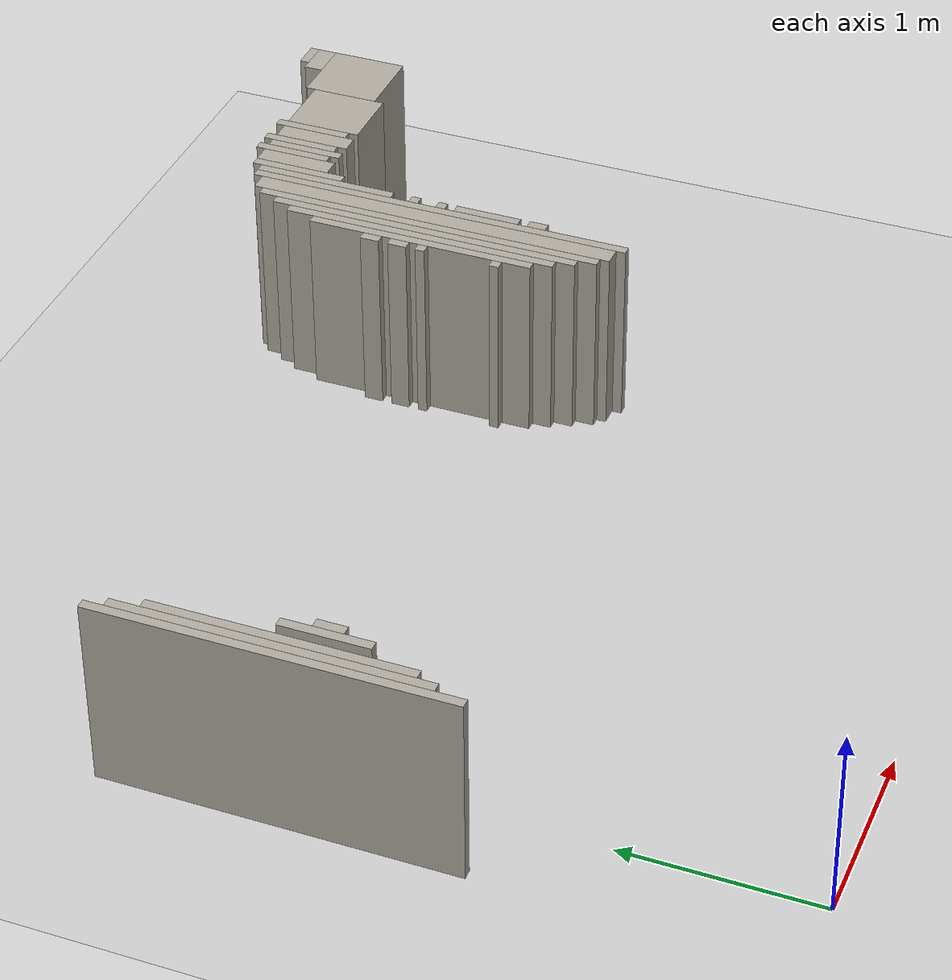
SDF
<sdf version="1.6">
 <world name="fr079_office">
  <include><uri>model://sun</uri></include>
  <include><uri>model://ground_plane</uri></include>
  <model name="fr079_office_walls">
   <static>true</static>
   <link name="w2044">
    <pose>-0.373 2.444 0.500 0 0 0</pose>
    <collision name="c"><geometry><box><size>0.050 1.800 1.000</size></box></geometry></collision>
    <visual name="v">
     <geometry><box><size>0.050 1.800 1.000</size></box></geometry>
     <material><ambient>0.68 0.66 0.62 1</ambient><diffuse>0.68 0.66 0.62 1</diffuse></material>
    </visual>
   </link>
   <link name="w2085">
    <pose>-0.323 2.469 0.500 0 0 0</pose>
    <collision name="c"><geometry><box><size>0.050 1.550 1.000</size></box></geometry></collision>
    <visual name="v">
     <geometry><box><size>0.050 1.550 1.000</size></box></geometry>
     <material><ambient>0.68 0.66 0.62 1</ambient><diffuse>0.68 0.66 0.62 1</diffuse></material>
    </visual>
   </link>
   <link name="w2115">
    <pose>-0.273 2.444 0.500 0 0 0</pose>
    <collision name="c"><geometry><box><size>0.050 1.300 1.000</size></box></geometry></collision>
    <visual name="v">
     <geometry><box><size>0.050 1.300 1.000</size></box></geometry>
     <material><ambient>0.68 0.66 0.62 1</ambient><diffuse>0.68 0.66 0.62 1</diffuse></material>
    </visual>
   </link>
   <link name="w2187">
    <pose>-0.173 2.269 0.500 0 0 0</pose>
    <collision name="c"><geometry><box><size>0.050 0.450 1.000</size></box></geometry></collision>
    <visual name="v">
     <geometry><box><size>0.050 0.450 1.000</size></box></geometry>
     <material><ambient>0.68 0.66 0.62 1</ambient><diffuse>0.68 0.66 0.62 1</diffuse></material>
    </visual>
   </link>
   <link name="w2188">
    <pose>3.077 3.069 0.500 0 0 0</pose>
    <collision name="c"><geometry><box><size>0.050 2.050 1.000</size></box></geometry></collision>
    <visual name="v">
     <geometry><box><size>0.050 2.050 1.000</size></box></geometry>
     <material><ambient>0.68 0.66 0.62 1</ambient><diffuse>0.68 0.66 0.62 1</diffuse></material>
    </visual>
   </link>
   <link name="w2197">
    <pose>3.002 3.069 0.500 0 0 0</pose>
    <collision name="c"><geometry><box><size>0.100 1.950 1.000</size></box></geometry></collision>
    <visual name="v">
     <geometry><box><size>0.100 1.950 1.000</size></box></geometry>
     <material><ambient>0.68 0.66 0.62 1</ambient><diffuse>0.68 0.66 0.62 1</diffuse></material>
    </visual>
   </link>
   <link name="w2205">
    <pose>2.927 3.069 0.500 0 0 0</pose>
    <collision name="c"><geometry><box><size>0.050 1.850 1.000</size></box></geometry></collision>
    <visual name="v">
     <geometry><box><size>0.050 1.850 1.000</size></box></geometry>
     <material><ambient>0.68 0.66 0.62 1</ambient><diffuse>0.68 0.66 0.62 1</diffuse></material>
    </visual>
   </link>
   <link name="w2213">
    <pose>-0.123 2.269 0.500 0 0 0</pose>
    <collision name="c"><geometry><box><size>0.050 0.150 1.000</size></box></geometry></collision>
    <visual name="v">
     <geometry><box><size>0.050 0.150 1.000</size></box></geometry>
     <material><ambient>0.68 0.66 0.62 1</ambient><diffuse>0.68 0.66 0.62 1</diffuse></material>
    </visual>
   </link>
   <link name="w2227">
    <pose>2.877 3.069 0.500 0 0 0</pose>
    <collision name="c"><geometry><box><size>0.050 1.650 1.000</size></box></geometry></collision>
    <visual name="v">
     <geometry><box><size>0.050 1.650 1.000</size></box></geometry>
     <material><ambient>0.68 0.66 0.62 1</ambient><diffuse>0.68 0.66 0.62 1</diffuse></material>
    </visual>
   </link>
   <link name="w2246">
    <pose>2.827 3.069 0.500 0 0 0</pose>
    <collision name="c"><geometry><box><size>0.050 1.450 1.000</size></box></geometry></collision>
    <visual name="v">
     <geometry><box><size>0.050 1.450 1.000</size></box></geometry>
     <material><ambient>0.68 0.66 0.62 1</ambient><diffuse>0.68 0.66 0.62 1</diffuse></material>
    </visual>
   </link>
   <link name="w2264">
    <pose>2.777 3.044 0.500 0 0 0</pose>
    <collision name="c"><geometry><box><size>0.050 1.200 1.000</size></box></geometry></collision>
    <visual name="v">
     <geometry><box><size>0.050 1.200 1.000</size></box></geometry>
     <material><ambient>0.68 0.66 0.62 1</ambient><diffuse>0.68 0.66 0.62 1</diffuse></material>
    </visual>
   </link>
   <link name="w2279">
    <pose>3.127 2.544 0.500 0 0 0</pose>
    <collision name="c"><geometry><box><size>0.050 0.100 1.000</size></box></geometry></collision>
    <visual name="v">
     <geometry><box><size>0.050 0.100 1.000</size></box></geometry>
     <material><ambient>0.68 0.66 0.62 1</ambient><diffuse>0.68 0.66 0.62 1</diffuse></material>
    </visual>
   </link>
   <link name="w2319">
    <pose>2.727 2.619 0.500 0 0 0</pose>
    <collision name="c"><geometry><box><size>0.050 0.050 1.000</size></box></geometry></collision>
    <visual name="v">
     <geometry><box><size>0.050 0.050 1.000</size></box></geometry>
     <material><ambient>0.68 0.66 0.62 1</ambient><diffuse>0.68 0.66 0.62 1</diffuse></material>
    </visual>
   </link>
   <link name="w2327">
    <pose>3.127 2.819 0.500 0 0 0</pose>
    <collision name="c"><geometry><box><size>0.050 0.350 1.000</size></box></geometry></collision>
    <visual name="v">
     <geometry><box><size>0.050 0.350 1.000</size></box></geometry>
     <material><ambient>0.68 0.66 0.62 1</ambient><diffuse>0.68 0.66 0.62 1</diffuse></material>
    </visual>
   </link>
   <link name="w2397">
    <pose>2.727 3.019 0.500 0 0 0</pose>
    <collision name="c"><geometry><box><size>0.050 0.050 1.000</size></box></geometry></collision>
    <visual name="v">
     <geometry><box><size>0.050 0.050 1.000</size></box></geometry>
     <material><ambient>0.68 0.66 0.62 1</ambient><diffuse>0.68 0.66 0.62 1</diffuse></material>
    </visual>
   </link>
   <link name="w2414">
    <pose>3.127 3.069 0.500 0 0 0</pose>
    <collision name="c"><geometry><box><size>0.050 0.050 1.000</size></box></geometry></collision>
    <visual name="v">
     <geometry><box><size>0.050 0.050 1.000</size></box></geometry>
     <material><ambient>0.68 0.66 0.62 1</ambient><diffuse>0.68 0.66 0.62 1</diffuse></material>
    </visual>
   </link>
   <link name="w2430">
    <pose>2.727 3.144 0.500 0 0 0</pose>
    <collision name="c"><geometry><box><size>0.050 0.100 1.000</size></box></geometry></collision>
    <visual name="v">
     <geometry><box><size>0.050 0.100 1.000</size></box></geometry>
     <material><ambient>0.68 0.66 0.62 1</ambient><diffuse>0.68 0.66 0.62 1</diffuse></material>
    </visual>
   </link>
   <link name="w2459">
    <pose>3.127 3.219 0.500 0 0 0</pose>
    <collision name="c"><geometry><box><size>0.050 0.050 1.000</size></box></geometry></collision>
    <visual name="v">
     <geometry><box><size>0.050 0.050 1.000</size></box></geometry>
     <material><ambient>0.68 0.66 0.62 1</ambient><diffuse>0.68 0.66 0.62 1</diffuse></material>
    </visual>
   </link>
   <link name="w2473">
    <pose>2.727 3.294 0.500 0 0 0</pose>
    <collision name="c"><geometry><box><size>0.050 0.100 1.000</size></box></geometry></collision>
    <visual name="v">
     <geometry><box><size>0.050 0.100 1.000</size></box></geometry>
     <material><ambient>0.68 0.66 0.62 1</ambient><diffuse>0.68 0.66 0.62 1</diffuse></material>
    </visual>
   </link>
   <link name="w2499">
    <pose>3.127 3.719 0.500 0 0 0</pose>
    <collision name="c"><geometry><box><size>0.050 0.750 1.000</size></box></geometry></collision>
    <visual name="v">
     <geometry><box><size>0.050 0.750 1.000</size></box></geometry>
     <material><ambient>0.68 0.66 0.62 1</ambient><diffuse>0.68 0.66 0.62 1</diffuse></material>
    </visual>
   </link>
   <link name="w2553">
    <pose>3.177 3.894 0.500 0 0 0</pose>
    <collision name="c"><geometry><box><size>0.050 0.500 1.000</size></box></geometry></collision>
    <visual name="v">
     <geometry><box><size>0.050 0.500 1.000</size></box></geometry>
     <material><ambient>0.68 0.66 0.62 1</ambient><diffuse>0.68 0.66 0.62 1</diffuse></material>
    </visual>
   </link>
   <link name="w2567">
    <pose>3.252 3.944 0.500 0 0 0</pose>
    <collision name="c"><geometry><box><size>0.100 0.400 1.000</size></box></geometry></collision>
    <visual name="v">
     <geometry><box><size>0.100 0.400 1.000</size></box></geometry>
     <material><ambient>0.68 0.66 0.62 1</ambient><diffuse>0.68 0.66 0.62 1</diffuse></material>
    </visual>
   </link>
   <link name="w2568">
    <pose>3.377 3.944 0.500 0 0 0</pose>
    <collision name="c"><geometry><box><size>0.050 0.400 1.000</size></box></geometry></collision>
    <visual name="v">
     <geometry><box><size>0.050 0.400 1.000</size></box></geometry>
     <material><ambient>0.68 0.66 0.62 1</ambient><diffuse>0.68 0.66 0.62 1</diffuse></material>
    </visual>
   </link>
   <link name="w2569">
    <pose>3.502 3.944 0.500 0 0 0</pose>
    <collision name="c"><geometry><box><size>0.100 0.400 1.000</size></box></geometry></collision>
    <visual name="v">
     <geometry><box><size>0.100 0.400 1.000</size></box></geometry>
     <material><ambient>0.68 0.66 0.62 1</ambient><diffuse>0.68 0.66 0.62 1</diffuse></material>
    </visual>
   </link>
   <link name="w2570">
    <pose>3.777 3.944 0.500 0 0 0</pose>
    <collision name="c"><geometry><box><size>0.350 0.400 1.000</size></box></geometry></collision>
    <visual name="v">
     <geometry><box><size>0.350 0.400 1.000</size></box></geometry>
     <material><ambient>0.68 0.66 0.62 1</ambient><diffuse>0.68 0.66 0.62 1</diffuse></material>
    </visual>
   </link>
   <link name="w2575">
    <pose>3.327 3.994 0.500 0 0 0</pose>
    <collision name="c"><geometry><box><size>0.050 0.400 1.000</size></box></geometry></collision>
    <visual name="v">
     <geometry><box><size>0.050 0.400 1.000</size></box></geometry>
     <material><ambient>0.68 0.66 0.62 1</ambient><diffuse>0.68 0.66 0.62 1</diffuse></material>
    </visual>
   </link>
   <link name="w2576">
    <pose>3.427 3.994 0.500 0 0 0</pose>
    <collision name="c"><geometry><box><size>0.050 0.400 1.000</size></box></geometry></collision>
    <visual name="v">
     <geometry><box><size>0.050 0.400 1.000</size></box></geometry>
     <material><ambient>0.68 0.66 0.62 1</ambient><diffuse>0.68 0.66 0.62 1</diffuse></material>
    </visual>
   </link>
   <link name="w2577">
    <pose>3.577 3.994 0.500 0 0 0</pose>
    <collision name="c"><geometry><box><size>0.050 0.400 1.000</size></box></geometry></collision>
    <visual name="v">
     <geometry><box><size>0.050 0.400 1.000</size></box></geometry>
     <material><ambient>0.68 0.66 0.62 1</ambient><diffuse>0.68 0.66 0.62 1</diffuse></material>
    </visual>
   </link>
   <link name="w2578">
    <pose>4.152 3.994 0.500 0 0 0</pose>
    <collision name="c"><geometry><box><size>0.400 0.400 1.000</size></box></geometry></collision>
    <visual name="v">
     <geometry><box><size>0.400 0.400 1.000</size></box></geometry>
     <material><ambient>0.68 0.66 0.62 1</ambient><diffuse>0.68 0.66 0.62 1</diffuse></material>
    </visual>
   </link>
   <link name="w2667">
    <pose>4.252 4.244 0.500 0 0 0</pose>
    <collision name="c"><geometry><box><size>0.200 0.100 1.000</size></box></geometry></collision>
    <visual name="v">
     <geometry><box><size>0.200 0.100 1.000</size></box></geometry>
     <material><ambient>0.68 0.66 0.62 1</ambient><diffuse>0.68 0.66 0.62 1</diffuse></material>
    </visual>
   </link>
   <link name="w2683">
    <pose>4.277 4.319 0.500 0 0 0</pose>
    <collision name="c"><geometry><box><size>0.150 0.050 1.000</size></box></geometry></collision>
    <visual name="v">
     <geometry><box><size>0.150 0.050 1.000</size></box></geometry>
     <material><ambient>0.68 0.66 0.62 1</ambient><diffuse>0.68 0.66 0.62 1</diffuse></material>
    </visual>
   </link>
  </model>
 </world>
</sdf>
